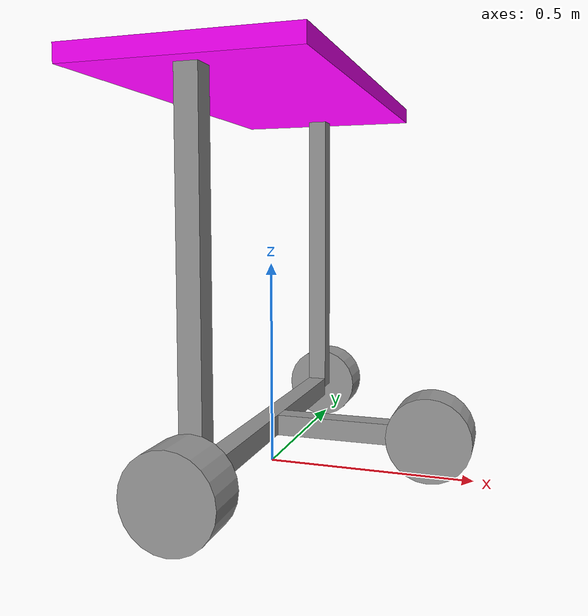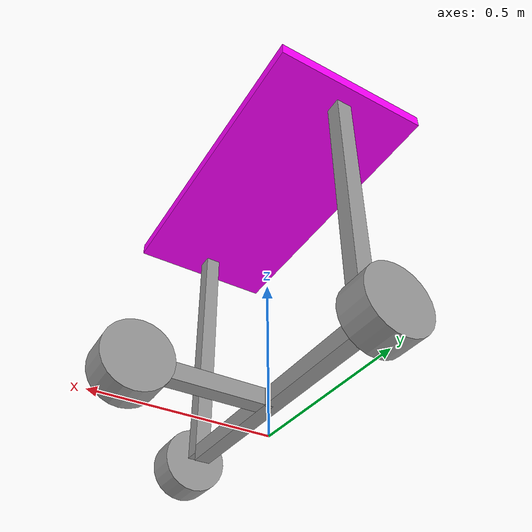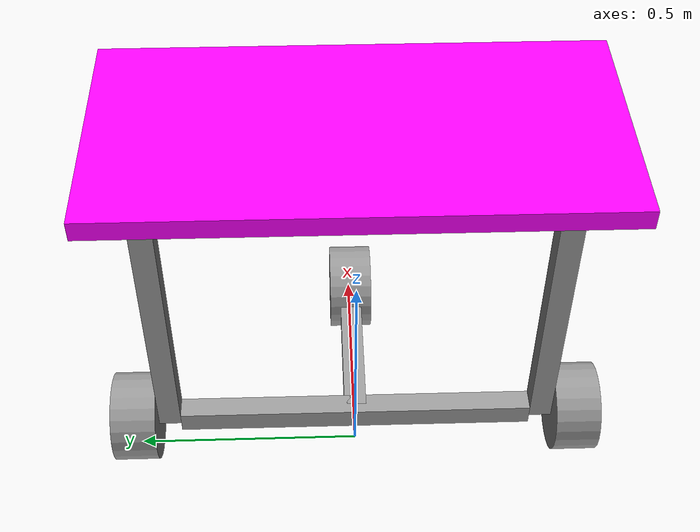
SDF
<?xml version='1.0'?>
<sdf version='1.7'>
  <model name='HumanoidRobot'>
    <link name='link_0'>
      <inertial>
        <mass>1</mass>
        <inertia>
          <ixx>0.166667</ixx>
          <ixy>0</ixy>
          <ixz>0</ixz>
          <iyy>0.166667</iyy>
          <iyz>0</iyz>
          <izz>0.166667</izz>
        </inertia>
        <pose>0 0 0 0 -0 0</pose>
      </inertial>
      <pose>0 -0 0.92 0 -0 0</pose>
      <gravity>1</gravity>
      <self_collide>0</self_collide>
      <kinematic>0</kinematic>
      <enable_wind>0</enable_wind>
      <visual name='visual'>
        <pose>0 0 0 0 -0 0</pose>
        <geometry>
          <box>
            <size>0.5 1 0.04</size>
          </box>
        </geometry>
        <material>
          <lighting>1</lighting>
          <script>
            <uri>file://media/materials/scripts/gazebo.material</uri>
            <name>Gazebo/Grey</name>
          </script>
          <shader type='pixel'>
            <normal_map>__default__</normal_map>
          </shader>
          <ambient>0.3 0.3 0.3 1</ambient>
          <diffuse>1 0 1 1</diffuse>
          <specular>0.01 0.01 0.01 1</specular>
          <emissive>0 0 0 1</emissive>
        </material>
        <transparency>0</transparency>
        <cast_shadows>1</cast_shadows>
      </visual>
      <collision name='collision'>
        <laser_retro>0</laser_retro>
        <max_contacts>10</max_contacts>
        <pose>0 0 0 0 -0 0</pose>
        <geometry>
          <box>
            <size>0.5 1 0.04</size>
          </box>
        </geometry>
        <surface>
          <friction>
            <ode>
              <mu>1</mu>
              <mu2>1</mu2>
              <fdir1>0 0 0</fdir1>
              <slip1>0</slip1>
              <slip2>0</slip2>
            </ode>
            <torsional>
              <coefficient>1</coefficient>
              <patch_radius>0</patch_radius>
              <surface_radius>0</surface_radius>
              <use_patch_radius>1</use_patch_radius>
              <ode>
                <slip>0</slip>
              </ode>
            </torsional>
          </friction>
          <bounce>
            <restitution_coefficient>0</restitution_coefficient>
            <threshold>1e+06</threshold>
          </bounce>
          <contact>
            <collide_without_contact>0</collide_without_contact>
            <collide_without_contact_bitmask>1</collide_without_contact_bitmask>
            <collide_bitmask>1</collide_bitmask>
            <ode>
              <soft_cfm>0</soft_cfm>
              <soft_erp>0.2</soft_erp>
              <kp>1e+13</kp>
              <kd>1</kd>
              <max_vel>0.01</max_vel>
              <min_depth>0</min_depth>
            </ode>
            <bullet>
              <split_impulse>1</split_impulse>
              <split_impulse_penetration_threshold>-0.01</split_impulse_penetration_threshold>
              <soft_cfm>0</soft_cfm>
              <soft_erp>0.2</soft_erp>
              <kp>1e+13</kp>
              <kd>1</kd>
            </bullet>
          </contact>
        </surface>
      </collision>
    </link>
    <link name='link_0_0'>
      <inertial>
        <mass>1</mass>
        <inertia>
          <ixx>0.145833</ixx>
          <ixy>0</ixy>
          <ixz>0</ixz>
          <iyy>0.145833</iyy>
          <iyz>0</iyz>
          <izz>0.125</izz>
        </inertia>
        <pose>0 0 0 0 -0 0</pose>
      </inertial>
      <pose>0 -0.5 0.1 0 -0 0</pose>
      <gravity>1</gravity>
      <self_collide>0</self_collide>
      <kinematic>0</kinematic>
      <enable_wind>0</enable_wind>
      <visual name='visual'>
        <pose>0 0 0 1.5708 -0 0</pose>
        <geometry>
          <cylinder>
            <radius>0.1</radius>
            <length>0.1</length>
          </cylinder>
        </geometry>
        <material>
          <lighting>1</lighting>
          <script>
            <uri>file://media/materials/scripts/gazebo.material</uri>
            <name>Gazebo/Grey</name>
          </script>
          <shader type='pixel'>
            <normal_map>__default__</normal_map>
          </shader>
          <ambient>0 0 0 1</ambient>
          <diffuse>0 0 0 1</diffuse>
          <specular>0.01 0.01 0.01 1</specular>
          <emissive>0 0 0 1</emissive>
        </material>
        <transparency>0</transparency>
        <cast_shadows>1</cast_shadows>
      </visual>
      <collision name='collision'>
        <laser_retro>0</laser_retro>
        <max_contacts>10</max_contacts>
        <pose>0 0 0 1.5708 -0 0</pose>
        <geometry>
          <cylinder>
            <radius>0.1</radius>
            <length>0.1</length>
          </cylinder>
        </geometry>
        <surface>
          <friction>
            <ode>
              <mu>1</mu>
              <mu2>1</mu2>
              <fdir1>0 0 0</fdir1>
              <slip1>0</slip1>
              <slip2>0</slip2>
            </ode>
            <torsional>
              <coefficient>1</coefficient>
              <patch_radius>0</patch_radius>
              <surface_radius>0</surface_radius>
              <use_patch_radius>1</use_patch_radius>
              <ode>
                <slip>0</slip>
              </ode>
            </torsional>
          </friction>
          <bounce>
            <restitution_coefficient>0</restitution_coefficient>
            <threshold>1e+06</threshold>
          </bounce>
          <contact>
            <collide_without_contact>0</collide_without_contact>
            <collide_without_contact_bitmask>1</collide_without_contact_bitmask>
            <collide_bitmask>1</collide_bitmask>
            <ode>
              <soft_cfm>0</soft_cfm>
              <soft_erp>0.2</soft_erp>
              <kp>1e+13</kp>
              <kd>1</kd>
              <max_vel>0.01</max_vel>
              <min_depth>0</min_depth>
            </ode>
            <bullet>
              <split_impulse>1</split_impulse>
              <split_impulse_penetration_threshold>-0.01</split_impulse_penetration_threshold>
              <soft_cfm>0</soft_cfm>
              <soft_erp>0.2</soft_erp>
              <kp>1e+13</kp>
              <kd>1</kd>
            </bullet>
          </contact>
        </surface>
      </collision>
    </link>
    <link name='link_0_0_clone'>
      <inertial>
        <mass>1</mass>
        <inertia>
          <ixx>0.145833</ixx>
          <ixy>0</ixy>
          <ixz>0</ixz>
          <iyy>0.145833</iyy>
          <iyz>0</iyz>
          <izz>0.125</izz>
        </inertia>
        <pose>0 0 0 0 -0 0</pose>
      </inertial>
      <pose>-0 0.5 0.1 0 -0 0</pose>
      <gravity>1</gravity>
      <self_collide>0</self_collide>
      <kinematic>0</kinematic>
      <enable_wind>0</enable_wind>
      <visual name='visual_0'>
        <pose>0 0 0 1.5708 -0 0</pose>
        <geometry>
          <cylinder>
            <radius>0.1</radius>
            <length>0.1</length>
          </cylinder>
        </geometry>
        <material>
          <lighting>1</lighting>
          <script>
            <uri>file://media/materials/scripts/gazebo.material</uri>
            <name>Gazebo/Gray</name>
          </script>
          <shader type='pixel'>
            <normal_map>__default__</normal_map>
          </shader>
          <ambient>0 0 0 1</ambient>
          <diffuse>0 0 0 1</diffuse>
          <specular>0.01 0.01 0.01 1</specular>
          <emissive>0 0 0 1</emissive>
        </material>
        <transparency>0</transparency>
        <cast_shadows>1</cast_shadows>
      </visual>
      <collision name='collision'>
        <laser_retro>0</laser_retro>
        <max_contacts>10</max_contacts>
        <pose>0 0 0 1.5708 -0 0</pose>
        <geometry>
          <cylinder>
            <radius>0.1</radius>
            <length>0.1</length>
          </cylinder>
        </geometry>
        <surface>
          <friction>
            <ode>
              <mu>1</mu>
              <mu2>1</mu2>
              <fdir1>0 0 0</fdir1>
              <slip1>0</slip1>
              <slip2>0</slip2>
            </ode>
            <torsional>
              <coefficient>1</coefficient>
              <patch_radius>0</patch_radius>
              <surface_radius>0</surface_radius>
              <use_patch_radius>1</use_patch_radius>
              <ode>
                <slip>0</slip>
              </ode>
            </torsional>
          </friction>
          <bounce>
            <restitution_coefficient>0</restitution_coefficient>
            <threshold>1e+06</threshold>
          </bounce>
          <contact>
            <collide_without_contact>0</collide_without_contact>
            <collide_without_contact_bitmask>1</collide_without_contact_bitmask>
            <collide_bitmask>1</collide_bitmask>
            <ode>
              <soft_cfm>0</soft_cfm>
              <soft_erp>0.2</soft_erp>
              <kp>1e+13</kp>
              <kd>1</kd>
              <max_vel>0.01</max_vel>
              <min_depth>0</min_depth>
            </ode>
            <bullet>
              <split_impulse>1</split_impulse>
              <split_impulse_penetration_threshold>-0.01</split_impulse_penetration_threshold>
              <soft_cfm>0</soft_cfm>
              <soft_erp>0.2</soft_erp>
              <kp>1e+13</kp>
              <kd>1</kd>
            </bullet>
          </contact>
        </surface>
      </collision>
    </link>
    <link name='link_0_0_clone_0'>
      <inertial>
        <mass>1</mass>
        <inertia>
          <ixx>0.145833</ixx>
          <ixy>0</ixy>
          <ixz>0</ixz>
          <iyy>0.145833</iyy>
          <iyz>0</iyz>
          <izz>0.125</izz>
        </inertia>
        <pose>0 0 0 0 -0 0</pose>
      </inertial>
      <pose>0.4 0 0.1 0 -0 0</pose>
      <gravity>1</gravity>
      <self_collide>0</self_collide>
      <kinematic>0</kinematic>
      <enable_wind>0</enable_wind>
      <visual name='visual'>
        <pose>0 0 0 1.5708 -0 0</pose>
        <geometry>
          <cylinder>
            <radius>0.1</radius>
            <length>0.1</length>
          </cylinder>
        </geometry>
        <material>
          <lighting>1</lighting>
          <script>
            <uri>file://media/materials/scripts/gazebo.material</uri>
            <name>Gazebo/Grey</name>
          </script>
          <shader type='pixel'>
            <normal_map>__default__</normal_map>
          </shader>
          <ambient>0 0 0 1</ambient>
          <diffuse>0 0 0 1</diffuse>
          <specular>0.01 0.01 0.01 1</specular>
          <emissive>0 0 0 1</emissive>
        </material>
        <transparency>0</transparency>
        <cast_shadows>1</cast_shadows>
      </visual>
      <collision name='collision'>
        <laser_retro>0</laser_retro>
        <max_contacts>10</max_contacts>
        <pose>0 0 0 1.5708 -0 0</pose>
        <geometry>
          <cylinder>
            <radius>0.1</radius>
            <length>0.1</length>
          </cylinder>
        </geometry>
        <surface>
          <friction>
            <ode>
              <mu>1</mu>
              <mu2>1</mu2>
              <fdir1>0 0 0</fdir1>
              <slip1>0</slip1>
              <slip2>0</slip2>
            </ode>
            <torsional>
              <coefficient>1</coefficient>
              <patch_radius>0</patch_radius>
              <surface_radius>0</surface_radius>
              <use_patch_radius>1</use_patch_radius>
              <ode>
                <slip>0</slip>
              </ode>
            </torsional>
          </friction>
          <bounce>
            <restitution_coefficient>0</restitution_coefficient>
            <threshold>1e+06</threshold>
          </bounce>
          <contact>
            <collide_without_contact>0</collide_without_contact>
            <collide_without_contact_bitmask>1</collide_without_contact_bitmask>
            <collide_bitmask>1</collide_bitmask>
            <ode>
              <soft_cfm>0</soft_cfm>
              <soft_erp>0.2</soft_erp>
              <kp>1e+13</kp>
              <kd>1</kd>
              <max_vel>0.01</max_vel>
              <min_depth>0</min_depth>
            </ode>
            <bullet>
              <split_impulse>1</split_impulse>
              <split_impulse_penetration_threshold>-0.01</split_impulse_penetration_threshold>
              <soft_cfm>0</soft_cfm>
              <soft_erp>0.2</soft_erp>
              <kp>1e+13</kp>
              <kd>1</kd>
            </bullet>
          </contact>
        </surface>
      </collision>
    </link>
    <link name='link_1'>
      <inertial>
        <mass>1</mass>
        <inertia>
          <ixx>0.166667</ixx>
          <ixy>0</ixy>
          <ixz>0</ixz>
          <iyy>0.166667</iyy>
          <iyz>0</iyz>
          <izz>0.166667</izz>
        </inertia>
        <pose>0 0 0 0 -0 0</pose>
      </inertial>
      <pose>0 -0.425 0.5 0 -0 0</pose>
      <gravity>1</gravity>
      <self_collide>0</self_collide>
      <kinematic>0</kinematic>
      <enable_wind>0</enable_wind>
      <visual name='visual'>
        <pose>0 0 0 0 -0 0</pose>
        <geometry>
          <box>
            <size>0.05 0.05 0.8</size>
          </box>
        </geometry>
        <material>
          <lighting>1</lighting>
          <script>
            <uri>file://media/materials/scripts/gazebo.material</uri>
            <name>Gazebo/Grey</name>
          </script>
          <shader type='pixel'>
            <normal_map>__default__</normal_map>
          </shader>
          <ambient>0.3 0.3 0.3 1</ambient>
          <diffuse>0.7 0.7 0.7 1</diffuse>
          <specular>0.01 0.01 0.01 1</specular>
          <emissive>0 0 0 1</emissive>
        </material>
        <transparency>0</transparency>
        <cast_shadows>1</cast_shadows>
      </visual>
      <collision name='collision'>
        <laser_retro>0</laser_retro>
        <max_contacts>10</max_contacts>
        <pose>0 0 0 0 -0 0</pose>
        <geometry>
          <box>
            <size>0.05 0.05 0.8</size>
          </box>
        </geometry>
        <surface>
          <friction>
            <ode>
              <mu>1</mu>
              <mu2>1</mu2>
              <fdir1>0 0 0</fdir1>
              <slip1>0</slip1>
              <slip2>0</slip2>
            </ode>
            <torsional>
              <coefficient>1</coefficient>
              <patch_radius>0</patch_radius>
              <surface_radius>0</surface_radius>
              <use_patch_radius>1</use_patch_radius>
              <ode>
                <slip>0</slip>
              </ode>
            </torsional>
          </friction>
          <bounce>
            <restitution_coefficient>0</restitution_coefficient>
            <threshold>1e+06</threshold>
          </bounce>
          <contact>
            <collide_without_contact>0</collide_without_contact>
            <collide_without_contact_bitmask>1</collide_without_contact_bitmask>
            <collide_bitmask>1</collide_bitmask>
            <ode>
              <soft_cfm>0</soft_cfm>
              <soft_erp>0.2</soft_erp>
              <kp>1e+13</kp>
              <kd>1</kd>
              <max_vel>0.01</max_vel>
              <min_depth>0</min_depth>
            </ode>
            <bullet>
              <split_impulse>1</split_impulse>
              <split_impulse_penetration_threshold>-0.01</split_impulse_penetration_threshold>
              <soft_cfm>0</soft_cfm>
              <soft_erp>0.2</soft_erp>
              <kp>1e+13</kp>
              <kd>1</kd>
            </bullet>
          </contact>
        </surface>
      </collision>
    </link>
    <link name='link_1_clone'>
      <inertial>
        <mass>1</mass>
        <inertia>
          <ixx>0.166667</ixx>
          <ixy>0</ixy>
          <ixz>0</ixz>
          <iyy>0.166667</iyy>
          <iyz>0</iyz>
          <izz>0.166667</izz>
        </inertia>
        <pose>0 0 0 0 -0 0</pose>
      </inertial>
      <pose>0 0.425 0.5 0 -0 0</pose>
      <gravity>1</gravity>
      <self_collide>0</self_collide>
      <kinematic>0</kinematic>
      <enable_wind>0</enable_wind>
      <visual name='visual'>
        <pose>0 0 0 0 -0 0</pose>
        <geometry>
          <box>
            <size>0.05 0.05 0.8</size>
          </box>
        </geometry>
        <material>
          <lighting>1</lighting>
          <script>
            <uri>file://media/materials/scripts/gazebo.material</uri>
            <name>Gazebo/Grey</name>
          </script>
          <shader type='pixel'>
            <normal_map>__default__</normal_map>
          </shader>
          <ambient>0.3 0.3 0.3 1</ambient>
          <diffuse>0.7 0.7 0.7 1</diffuse>
          <specular>0.01 0.01 0.01 1</specular>
          <emissive>0 0 0 1</emissive>
        </material>
        <transparency>0</transparency>
        <cast_shadows>1</cast_shadows>
      </visual>
      <collision name='collision'>
        <laser_retro>0</laser_retro>
        <max_contacts>10</max_contacts>
        <pose>0 0 0 0 -0 0</pose>
        <geometry>
          <box>
            <size>0.05 0.05 0.8</size>
          </box>
        </geometry>
        <surface>
          <friction>
            <ode>
              <mu>1</mu>
              <mu2>1</mu2>
              <fdir1>0 0 0</fdir1>
              <slip1>0</slip1>
              <slip2>0</slip2>
            </ode>
            <torsional>
              <coefficient>1</coefficient>
              <patch_radius>0</patch_radius>
              <surface_radius>0</surface_radius>
              <use_patch_radius>1</use_patch_radius>
              <ode>
                <slip>0</slip>
              </ode>
            </torsional>
          </friction>
          <bounce>
            <restitution_coefficient>0</restitution_coefficient>
            <threshold>1e+06</threshold>
          </bounce>
          <contact>
            <collide_without_contact>0</collide_without_contact>
            <collide_without_contact_bitmask>1</collide_without_contact_bitmask>
            <collide_bitmask>1</collide_bitmask>
            <ode>
              <soft_cfm>0</soft_cfm>
              <soft_erp>0.2</soft_erp>
              <kp>1e+13</kp>
              <kd>1</kd>
              <max_vel>0.01</max_vel>
              <min_depth>0</min_depth>
            </ode>
            <bullet>
              <split_impulse>1</split_impulse>
              <split_impulse_penetration_threshold>-0.01</split_impulse_penetration_threshold>
              <soft_cfm>0</soft_cfm>
              <soft_erp>0.2</soft_erp>
              <kp>1e+13</kp>
              <kd>1</kd>
            </bullet>
          </contact>
        </surface>
      </collision>
    </link>
    <link name='link_1_clone_0'>
      <inertial>
        <mass>1</mass>
        <inertia>
          <ixx>0.166667</ixx>
          <ixy>0</ixy>
          <ixz>0</ixz>
          <iyy>0.166667</iyy>
          <iyz>0</iyz>
          <izz>0.166667</izz>
        </inertia>
        <pose>0 0 0 0 -0 0</pose>
      </inertial>
      <pose>0 0 0.1 0 -0 0</pose>
      <gravity>1</gravity>
      <self_collide>0</self_collide>
      <kinematic>0</kinematic>
      <enable_wind>0</enable_wind>
      <visual name='visual'>
        <pose>0 0 0 0 -0 0</pose>
        <geometry>
          <box>
            <size>0.05 0.8 0.05</size>
          </box>
        </geometry>
        <material>
          <lighting>1</lighting>
          <script>
            <uri>file://media/materials/scripts/gazebo.material</uri>
            <name>Gazebo/Grey</name>
          </script>
          <shader type='pixel'>
            <normal_map>__default__</normal_map>
          </shader>
          <ambient>0.3 0.3 0.3 1</ambient>
          <diffuse>0.7 0.7 0.7 1</diffuse>
          <specular>0.01 0.01 0.01 1</specular>
          <emissive>0 0 0 1</emissive>
        </material>
        <transparency>0</transparency>
        <cast_shadows>1</cast_shadows>
      </visual>
      <collision name='collision'>
        <laser_retro>0</laser_retro>
        <max_contacts>10</max_contacts>
        <pose>0 0 0 0 -0 0</pose>
        <geometry>
          <box>
            <size>0.05 0.8 0.05</size>
          </box>
        </geometry>
        <surface>
          <friction>
            <ode>
              <mu>1</mu>
              <mu2>1</mu2>
              <fdir1>0 0 0</fdir1>
              <slip1>0</slip1>
              <slip2>0</slip2>
            </ode>
            <torsional>
              <coefficient>1</coefficient>
              <patch_radius>0</patch_radius>
              <surface_radius>0</surface_radius>
              <use_patch_radius>1</use_patch_radius>
              <ode>
                <slip>0</slip>
              </ode>
            </torsional>
          </friction>
          <bounce>
            <restitution_coefficient>0</restitution_coefficient>
            <threshold>1e+06</threshold>
          </bounce>
          <contact>
            <collide_without_contact>0</collide_without_contact>
            <collide_without_contact_bitmask>1</collide_without_contact_bitmask>
            <collide_bitmask>1</collide_bitmask>
            <ode>
              <soft_cfm>0</soft_cfm>
              <soft_erp>0.2</soft_erp>
              <kp>1e+13</kp>
              <kd>1</kd>
              <max_vel>0.01</max_vel>
              <min_depth>0</min_depth>
            </ode>
            <bullet>
              <split_impulse>1</split_impulse>
              <split_impulse_penetration_threshold>-0.01</split_impulse_penetration_threshold>
              <soft_cfm>0</soft_cfm>
              <soft_erp>0.2</soft_erp>
              <kp>1e+13</kp>
              <kd>1</kd>
            </bullet>
          </contact>
        </surface>
      </collision>
    </link>
    <link name='link_1_clone_0_clone'>
      <inertial>
        <mass>1</mass>
        <inertia>
          <ixx>0.166667</ixx>
          <ixy>0</ixy>
          <ixz>0</ixz>
          <iyy>0.166667</iyy>
          <iyz>0</iyz>
          <izz>0.166667</izz>
        </inertia>
        <pose>0 0 0 0 -0 0</pose>
      </inertial>
      <pose>0.2 -0 0.1 0 -0 0</pose>
      <gravity>1</gravity>
      <self_collide>0</self_collide>
      <kinematic>0</kinematic>
      <enable_wind>0</enable_wind>
      <visual name='visual'>
        <pose>0 0 0 0 -0 0</pose>
        <geometry>
          <box>
            <size>0.4 0.05 0.05</size>
          </box>
        </geometry>
        <material>
          <lighting>1</lighting>
          <script>
            <uri>file://media/materials/scripts/gazebo.material</uri>
            <name>Gazebo/Grey</name>
          </script>
          <shader type='pixel'>
            <normal_map>__default__</normal_map>
          </shader>
          <ambient>0.3 0.3 0.3 1</ambient>
          <diffuse>0.7 0.7 0.7 1</diffuse>
          <specular>0.01 0.01 0.01 1</specular>
          <emissive>0 0 0 1</emissive>
        </material>
        <transparency>0</transparency>
        <cast_shadows>1</cast_shadows>
      </visual>
      <collision name='collision'>
        <laser_retro>0</laser_retro>
        <max_contacts>10</max_contacts>
        <pose>0 0 0 0 -0 0</pose>
        <geometry>
          <box>
            <size>0.4 0.05 0.05</size>
          </box>
        </geometry>
        <surface>
          <friction>
            <ode>
              <mu>1</mu>
              <mu2>1</mu2>
              <fdir1>0 0 0</fdir1>
              <slip1>0</slip1>
              <slip2>0</slip2>
            </ode>
            <torsional>
              <coefficient>1</coefficient>
              <patch_radius>0</patch_radius>
              <surface_radius>0</surface_radius>
              <use_patch_radius>1</use_patch_radius>
              <ode>
                <slip>0</slip>
              </ode>
            </torsional>
          </friction>
          <bounce>
            <restitution_coefficient>0</restitution_coefficient>
            <threshold>1e+06</threshold>
          </bounce>
          <contact>
            <collide_without_contact>0</collide_without_contact>
            <collide_without_contact_bitmask>1</collide_without_contact_bitmask>
            <collide_bitmask>1</collide_bitmask>
            <ode>
              <soft_cfm>0</soft_cfm>
              <soft_erp>0.2</soft_erp>
              <kp>1e+13</kp>
              <kd>1</kd>
              <max_vel>0.01</max_vel>
              <min_depth>0</min_depth>
            </ode>
            <bullet>
              <split_impulse>1</split_impulse>
              <split_impulse_penetration_threshold>-0.01</split_impulse_penetration_threshold>
              <soft_cfm>0</soft_cfm>
              <soft_erp>0.2</soft_erp>
              <kp>1e+13</kp>
              <kd>1</kd>
            </bullet>
          </contact>
        </surface>
      </collision>
    </link>
    <joint name='link_0_JOINT_1' type='fixed'>
      <parent>link_0</parent>
      <child>link_1</child>
      <pose>0 0 0 0 -0 0</pose>
      <physics>
        <ode>
          <limit>
            <cfm>0</cfm>
            <erp>0.2</erp>
          </limit>
          <suspension>
            <cfm>0</cfm>
            <erp>0.2</erp>
          </suspension>
        </ode>
      </physics>
    </joint>
    <joint name='link_0_JOINT_2' type='fixed'>
      <parent>link_0</parent>
      <child>link_1_clone</child>
      <pose>0 0 0 0 -0 0</pose>
      <physics>
        <ode>
          <limit>
            <cfm>0</cfm>
            <erp>0.2</erp>
          </limit>
          <suspension>
            <cfm>0</cfm>
            <erp>0.2</erp>
          </suspension>
        </ode>
      </physics>
    </joint>
    <joint name='link_1_JOINT_0' type='revolute'>
      <parent>link_1</parent>
      <child>link_0_0</child>
      <pose>0 0 0 0 -0 0</pose>
      <axis>
        <xyz>0 1 0</xyz>
        <limit>
          <lower>-1.79769e+308</lower>
          <upper>1.79769e+308</upper>
          <effort>-1</effort>
          <velocity>-1</velocity>
        </limit>
        <dynamics>
          <spring_reference>0</spring_reference>
          <spring_stiffness>0</spring_stiffness>
          <damping>0</damping>
          <friction>0</friction>
        </dynamics>
      </axis>
      <physics>
        <ode>
          <limit>
            <cfm>0</cfm>
            <erp>0.2</erp>
          </limit>
          <suspension>
            <cfm>0</cfm>
            <erp>0.2</erp>
          </suspension>
        </ode>
      </physics>
    </joint>
    <joint name='link_1_JOINT_6' type='fixed'>
      <parent>link_1</parent>
      <child>link_1_clone_0</child>
      <pose>0 0 0 0 -0 0</pose>
      <physics>
        <ode>
          <limit>
            <cfm>0</cfm>
            <erp>0.2</erp>
          </limit>
          <suspension>
            <cfm>0</cfm>
            <erp>0.2</erp>
          </suspension>
        </ode>
      </physics>
    </joint>
    <joint name='link_1_clone_0_JOINT_5' type='fixed'>
      <parent>link_1_clone_0</parent>
      <child>link_1_clone_0_clone</child>
      <pose>0 0 0 0 -0 0</pose>
      <physics>
        <ode>
          <limit>
            <cfm>0</cfm>
            <erp>0.2</erp>
          </limit>
          <suspension>
            <cfm>0</cfm>
            <erp>0.2</erp>
          </suspension>
        </ode>
      </physics>
    </joint>
    <joint name='link_1_clone_0_clone_JOINT_4' type='revolute'>
      <parent>link_1_clone_0_clone</parent>
      <child>link_0_0_clone_0</child>
      <pose>0 0 0 0 -0 0</pose>
      <axis>
        <xyz>0 1 0</xyz>
        <limit>
          <lower>-1.79769e+308</lower>
          <upper>1.79769e+308</upper>
          <effort>-1</effort>
          <velocity>-1</velocity>
        </limit>
        <dynamics>
          <spring_reference>0</spring_reference>
          <spring_stiffness>0</spring_stiffness>
          <damping>0</damping>
          <friction>0</friction>
        </dynamics>
      </axis>
      <physics>
        <ode>
          <limit>
            <cfm>0</cfm>
            <erp>0.2</erp>
          </limit>
          <suspension>
            <cfm>0</cfm>
            <erp>0.2</erp>
          </suspension>
        </ode>
      </physics>
    </joint>
    <joint name='link_1_clone_JOINT_3' type='revolute'>
      <parent>link_1_clone</parent>
      <child>link_0_0_clone</child>
      <pose>0 0 0 0 -0 0</pose>
      <axis>
        <xyz>0 1 0</xyz>
        <limit>
          <lower>-1.79769e+308</lower>
          <upper>1.79769e+308</upper>
          <effort>-1</effort>
          <velocity>-1</velocity>
        </limit>
        <dynamics>
          <spring_reference>0</spring_reference>
          <spring_stiffness>0</spring_stiffness>
          <damping>0</damping>
          <friction>0</friction>
        </dynamics>
      </axis>
      <physics>
        <ode>
          <limit>
            <cfm>0</cfm>
            <erp>0.2</erp>
          </limit>
          <suspension>
            <cfm>0</cfm>
            <erp>0.2</erp>
          </suspension>
        </ode>
      </physics>
    </joint>
    <joint name='link_1_clone_JOINT_7' type='fixed'>
      <parent>link_1_clone</parent>
      <child>link_1_clone_0</child>
      <pose>0 0 0 0 -0 0</pose>
      <physics>
        <ode>
          <limit>
            <cfm>0</cfm>
            <erp>0.2</erp>
          </limit>
          <suspension>
            <cfm>0</cfm>
            <erp>0.2</erp>
          </suspension>
        </ode>
      </physics>
    </joint>
    <static>0</static>
    <allow_auto_disable>1</allow_auto_disable>
  </model>
</sdf>
